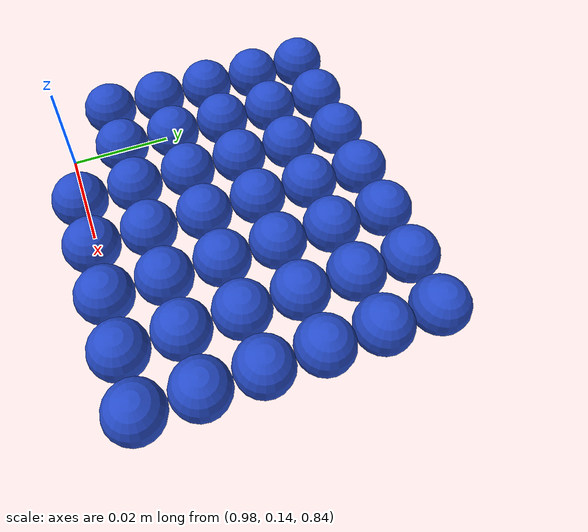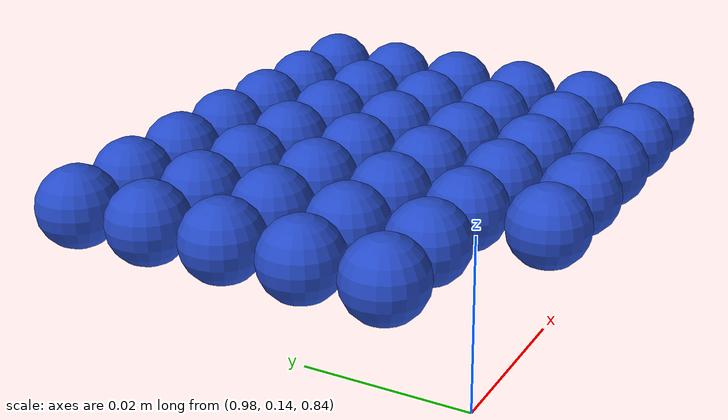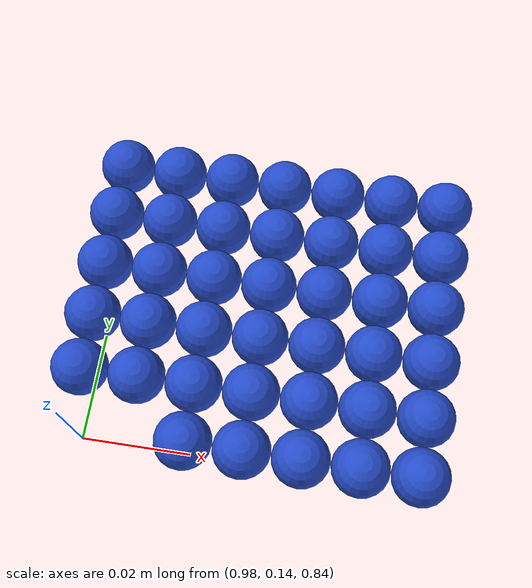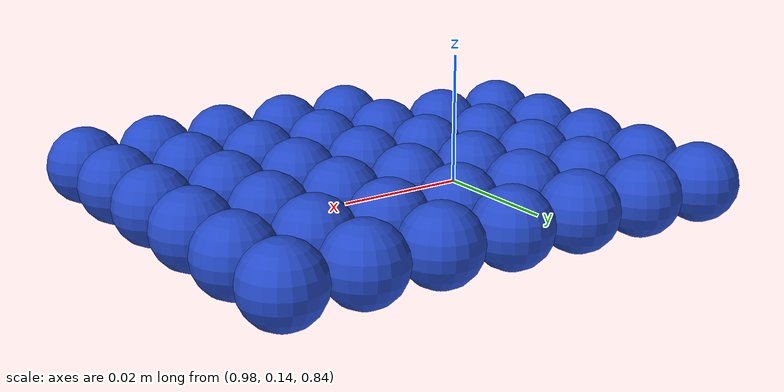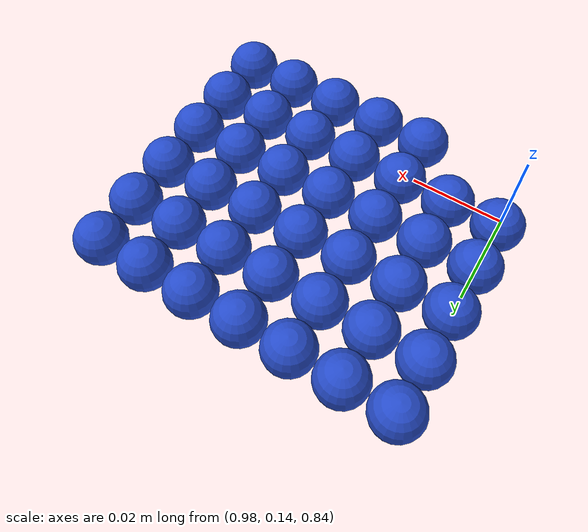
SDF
<sdf version="1.4">
 <world name="default">
  <include><uri>model://ground_plane</uri></include>
  <include><uri>model://sun</uri></include>
  <model name="ball_bearing_45">
   <link name="link">
    <pose>0 0 0.003 0 0 0</pose>
    <inertial>
     <mass>0.0011</mass>
     <inertia>
      <ixx>3.96e-09</ixx>
      <ixy>0</ixy>
      <ixz>0</ixz>
      <iyy>3.96e-09</iyy>
      <iyz>0</iyz>
      <izz>3.96e-09</izz>
     </inertia>
    </inertial>
    <collision name="collision">
     <geometry><sphere><radius>0.005</radius></sphere></geometry>
     <surface><contact><ode><max_vel>0.1</max_vel><min_depth>0.0001</min_depth></ode></contact></surface>
    </collision>
    <visual name="visual">
     <geometry><sphere><radius>0.005</radius></sphere></geometry>
     <material>
      <script><uri>file://media/materials/scripts/gazebo.material</uri><name>Gazebo/Blue</name></script>
     </material>
    </visual>
    <velocity_decay><linear>0</linear><angular>0.005</angular></velocity_decay>
   </link>
   <pose>1.0 0.14 0.85 0.0 0.0 0.0</pose>
  </model>
  <model name="ball_bearing_46">
   <link name="link">
    <pose>0 0 0.003 0 0 0</pose>
    <inertial>
     <mass>0.0011</mass>
     <inertia>
      <ixx>3.96e-09</ixx>
      <ixy>0</ixy>
      <ixz>0</ixz>
      <iyy>3.96e-09</iyy>
      <iyz>0</iyz>
      <izz>3.96e-09</izz>
     </inertia>
    </inertial>
    <collision name="collision">
     <geometry><sphere><radius>0.005</radius></sphere></geometry>
     <surface><contact><ode><max_vel>0.1</max_vel><min_depth>0.0001</min_depth></ode></contact></surface>
    </collision>
    <visual name="visual">
     <geometry><sphere><radius>0.005</radius></sphere></geometry>
     <material>
      <script><uri>file://media/materials/scripts/gazebo.material</uri><name>Gazebo/Blue</name></script>
     </material>
    </visual>
    <velocity_decay><linear>0</linear><angular>0.005</angular></velocity_decay>
   </link>
   <pose>1.01 0.14 0.85 0.0 0.0 0.0</pose>
  </model>
  <model name="ball_bearing_47">
   <link name="link">
    <pose>0 0 0.003 0 0 0</pose>
    <inertial>
     <mass>0.0011</mass>
     <inertia>
      <ixx>3.96e-09</ixx>
      <ixy>0</ixy>
      <ixz>0</ixz>
      <iyy>3.96e-09</iyy>
      <iyz>0</iyz>
      <izz>3.96e-09</izz>
     </inertia>
    </inertial>
    <collision name="collision">
     <geometry><sphere><radius>0.005</radius></sphere></geometry>
     <surface><contact><ode><max_vel>0.1</max_vel><min_depth>0.0001</min_depth></ode></contact></surface>
    </collision>
    <visual name="visual">
     <geometry><sphere><radius>0.005</radius></sphere></geometry>
     <material>
      <script><uri>file://media/materials/scripts/gazebo.material</uri><name>Gazebo/Blue</name></script>
     </material>
    </visual>
    <velocity_decay><linear>0</linear><angular>0.005</angular></velocity_decay>
   </link>
   <pose>1.02 0.14 0.85 0.0 0.0 0.0</pose>
  </model>
  <model name="ball_bearing_48">
   <link name="link">
    <pose>0 0 0.003 0 0 0</pose>
    <inertial>
     <mass>0.0011</mass>
     <inertia>
      <ixx>3.96e-09</ixx>
      <ixy>0</ixy>
      <ixz>0</ixz>
      <iyy>3.96e-09</iyy>
      <iyz>0</iyz>
      <izz>3.96e-09</izz>
     </inertia>
    </inertial>
    <collision name="collision">
     <geometry><sphere><radius>0.005</radius></sphere></geometry>
     <surface><contact><ode><max_vel>0.1</max_vel><min_depth>0.0001</min_depth></ode></contact></surface>
    </collision>
    <visual name="visual">
     <geometry><sphere><radius>0.005</radius></sphere></geometry>
     <material>
      <script><uri>file://media/materials/scripts/gazebo.material</uri><name>Gazebo/Blue</name></script>
     </material>
    </visual>
    <velocity_decay><linear>0</linear><angular>0.005</angular></velocity_decay>
   </link>
   <pose>1.03 0.14 0.85 0.0 0.0 0.0</pose>
  </model>
  <model name="ball_bearing_49">
   <link name="link">
    <pose>0 0 0.003 0 0 0</pose>
    <inertial>
     <mass>0.0011</mass>
     <inertia>
      <ixx>3.96e-09</ixx>
      <ixy>0</ixy>
      <ixz>0</ixz>
      <iyy>3.96e-09</iyy>
      <iyz>0</iyz>
      <izz>3.96e-09</izz>
     </inertia>
    </inertial>
    <collision name="collision">
     <geometry><sphere><radius>0.005</radius></sphere></geometry>
     <surface><contact><ode><max_vel>0.1</max_vel><min_depth>0.0001</min_depth></ode></contact></surface>
    </collision>
    <visual name="visual">
     <geometry><sphere><radius>0.005</radius></sphere></geometry>
     <material>
      <script><uri>file://media/materials/scripts/gazebo.material</uri><name>Gazebo/Blue</name></script>
     </material>
    </visual>
    <velocity_decay><linear>0</linear><angular>0.005</angular></velocity_decay>
   </link>
   <pose>1.04 0.14 0.85 0.0 0.0 0.0</pose>
  </model>
  <model name="ball_bearing_53">
   <link name="link">
    <pose>0 0 0.003 0 0 0</pose>
    <inertial>
     <mass>0.0011</mass>
     <inertia>
      <ixx>3.96e-09</ixx>
      <ixy>0</ixy>
      <ixz>0</ixz>
      <iyy>3.96e-09</iyy>
      <iyz>0</iyz>
      <izz>3.96e-09</izz>
     </inertia>
    </inertial>
    <collision name="collision">
     <geometry><sphere><radius>0.005</radius></sphere></geometry>
     <surface><contact><ode><max_vel>0.1</max_vel><min_depth>0.0001</min_depth></ode></contact></surface>
    </collision>
    <visual name="visual">
     <geometry><sphere><radius>0.005</radius></sphere></geometry>
     <material>
      <script><uri>file://media/materials/scripts/gazebo.material</uri><name>Gazebo/Blue</name></script>
     </material>
    </visual>
    <velocity_decay><linear>0</linear><angular>0.005</angular></velocity_decay>
   </link>
   <pose>0.98 0.15 0.85 0.0 0.0 0.0</pose>
  </model>
  <model name="ball_bearing_54">
   <link name="link">
    <pose>0 0 0.003 0 0 0</pose>
    <inertial>
     <mass>0.0011</mass>
     <inertia>
      <ixx>3.96e-09</ixx>
      <ixy>0</ixy>
      <ixz>0</ixz>
      <iyy>3.96e-09</iyy>
      <iyz>0</iyz>
      <izz>3.96e-09</izz>
     </inertia>
    </inertial>
    <collision name="collision">
     <geometry><sphere><radius>0.005</radius></sphere></geometry>
     <surface><contact><ode><max_vel>0.1</max_vel><min_depth>0.0001</min_depth></ode></contact></surface>
    </collision>
    <visual name="visual">
     <geometry><sphere><radius>0.005</radius></sphere></geometry>
     <material>
      <script><uri>file://media/materials/scripts/gazebo.material</uri><name>Gazebo/Blue</name></script>
     </material>
    </visual>
    <velocity_decay><linear>0</linear><angular>0.005</angular></velocity_decay>
   </link>
   <pose>0.99 0.15 0.85 0.0 0.0 0.0</pose>
  </model>
  <model name="ball_bearing_55">
   <link name="link">
    <pose>0 0 0.003 0 0 0</pose>
    <inertial>
     <mass>0.0011</mass>
     <inertia>
      <ixx>3.96e-09</ixx>
      <ixy>0</ixy>
      <ixz>0</ixz>
      <iyy>3.96e-09</iyy>
      <iyz>0</iyz>
      <izz>3.96e-09</izz>
     </inertia>
    </inertial>
    <collision name="collision">
     <geometry><sphere><radius>0.005</radius></sphere></geometry>
     <surface><contact><ode><max_vel>0.1</max_vel><min_depth>0.0001</min_depth></ode></contact></surface>
    </collision>
    <visual name="visual">
     <geometry><sphere><radius>0.005</radius></sphere></geometry>
     <material>
      <script><uri>file://media/materials/scripts/gazebo.material</uri><name>Gazebo/Blue</name></script>
     </material>
    </visual>
    <velocity_decay><linear>0</linear><angular>0.005</angular></velocity_decay>
   </link>
   <pose>1.0 0.15 0.85 0.0 0.0 0.0</pose>
  </model>
  <model name="ball_bearing_56">
   <link name="link">
    <pose>0 0 0.003 0 0 0</pose>
    <inertial>
     <mass>0.0011</mass>
     <inertia>
      <ixx>3.96e-09</ixx>
      <ixy>0</ixy>
      <ixz>0</ixz>
      <iyy>3.96e-09</iyy>
      <iyz>0</iyz>
      <izz>3.96e-09</izz>
     </inertia>
    </inertial>
    <collision name="collision">
     <geometry><sphere><radius>0.005</radius></sphere></geometry>
     <surface><contact><ode><max_vel>0.1</max_vel><min_depth>0.0001</min_depth></ode></contact></surface>
    </collision>
    <visual name="visual">
     <geometry><sphere><radius>0.005</radius></sphere></geometry>
     <material>
      <script><uri>file://media/materials/scripts/gazebo.material</uri><name>Gazebo/Blue</name></script>
     </material>
    </visual>
    <velocity_decay><linear>0</linear><angular>0.005</angular></velocity_decay>
   </link>
   <pose>1.01 0.15 0.85 0.0 0.0 0.0</pose>
  </model>
  <model name="ball_bearing_57">
   <link name="link">
    <pose>0 0 0.003 0 0 0</pose>
    <inertial>
     <mass>0.0011</mass>
     <inertia>
      <ixx>3.96e-09</ixx>
      <ixy>0</ixy>
      <ixz>0</ixz>
      <iyy>3.96e-09</iyy>
      <iyz>0</iyz>
      <izz>3.96e-09</izz>
     </inertia>
    </inertial>
    <collision name="collision">
     <geometry><sphere><radius>0.005</radius></sphere></geometry>
     <surface><contact><ode><max_vel>0.1</max_vel><min_depth>0.0001</min_depth></ode></contact></surface>
    </collision>
    <visual name="visual">
     <geometry><sphere><radius>0.005</radius></sphere></geometry>
     <material>
      <script><uri>file://media/materials/scripts/gazebo.material</uri><name>Gazebo/Blue</name></script>
     </material>
    </visual>
    <velocity_decay><linear>0</linear><angular>0.005</angular></velocity_decay>
   </link>
   <pose>1.02 0.15 0.85 0.0 0.0 0.0</pose>
  </model>
  <model name="ball_bearing_58">
   <link name="link">
    <pose>0 0 0.003 0 0 0</pose>
    <inertial>
     <mass>0.0011</mass>
     <inertia>
      <ixx>3.96e-09</ixx>
      <ixy>0</ixy>
      <ixz>0</ixz>
      <iyy>3.96e-09</iyy>
      <iyz>0</iyz>
      <izz>3.96e-09</izz>
     </inertia>
    </inertial>
    <collision name="collision">
     <geometry><sphere><radius>0.005</radius></sphere></geometry>
     <surface><contact><ode><max_vel>0.1</max_vel><min_depth>0.0001</min_depth></ode></contact></surface>
    </collision>
    <visual name="visual">
     <geometry><sphere><radius>0.005</radius></sphere></geometry>
     <material>
      <script><uri>file://media/materials/scripts/gazebo.material</uri><name>Gazebo/Blue</name></script>
     </material>
    </visual>
    <velocity_decay><linear>0</linear><angular>0.005</angular></velocity_decay>
   </link>
   <pose>1.03 0.15 0.85 0.0 0.0 0.0</pose>
  </model>
  <model name="ball_bearing_59">
   <link name="link">
    <pose>0 0 0.003 0 0 0</pose>
    <inertial>
     <mass>0.0011</mass>
     <inertia>
      <ixx>3.96e-09</ixx>
      <ixy>0</ixy>
      <ixz>0</ixz>
      <iyy>3.96e-09</iyy>
      <iyz>0</iyz>
      <izz>3.96e-09</izz>
     </inertia>
    </inertial>
    <collision name="collision">
     <geometry><sphere><radius>0.005</radius></sphere></geometry>
     <surface><contact><ode><max_vel>0.1</max_vel><min_depth>0.0001</min_depth></ode></contact></surface>
    </collision>
    <visual name="visual">
     <geometry><sphere><radius>0.005</radius></sphere></geometry>
     <material>
      <script><uri>file://media/materials/scripts/gazebo.material</uri><name>Gazebo/Blue</name></script>
     </material>
    </visual>
    <velocity_decay><linear>0</linear><angular>0.005</angular></velocity_decay>
   </link>
   <pose>1.04 0.15 0.85 0.0 0.0 0.0</pose>
  </model>
  <model name="ball_bearing_63">
   <link name="link">
    <pose>0 0 0.003 0 0 0</pose>
    <inertial>
     <mass>0.0011</mass>
     <inertia>
      <ixx>3.96e-09</ixx>
      <ixy>0</ixy>
      <ixz>0</ixz>
      <iyy>3.96e-09</iyy>
      <iyz>0</iyz>
      <izz>3.96e-09</izz>
     </inertia>
    </inertial>
    <collision name="collision">
     <geometry><sphere><radius>0.005</radius></sphere></geometry>
     <surface><contact><ode><max_vel>0.1</max_vel><min_depth>0.0001</min_depth></ode></contact></surface>
    </collision>
    <visual name="visual">
     <geometry><sphere><radius>0.005</radius></sphere></geometry>
     <material>
      <script><uri>file://media/materials/scripts/gazebo.material</uri><name>Gazebo/Blue</name></script>
     </material>
    </visual>
    <velocity_decay><linear>0</linear><angular>0.005</angular></velocity_decay>
   </link>
   <pose>0.98 0.16 0.85 0.0 0.0 0.0</pose>
  </model>
  <model name="ball_bearing_64">
   <link name="link">
    <pose>0 0 0.003 0 0 0</pose>
    <inertial>
     <mass>0.0011</mass>
     <inertia>
      <ixx>3.96e-09</ixx>
      <ixy>0</ixy>
      <ixz>0</ixz>
      <iyy>3.96e-09</iyy>
      <iyz>0</iyz>
      <izz>3.96e-09</izz>
     </inertia>
    </inertial>
    <collision name="collision">
     <geometry><sphere><radius>0.005</radius></sphere></geometry>
     <surface><contact><ode><max_vel>0.1</max_vel><min_depth>0.0001</min_depth></ode></contact></surface>
    </collision>
    <visual name="visual">
     <geometry><sphere><radius>0.005</radius></sphere></geometry>
     <material>
      <script><uri>file://media/materials/scripts/gazebo.material</uri><name>Gazebo/Blue</name></script>
     </material>
    </visual>
    <velocity_decay><linear>0</linear><angular>0.005</angular></velocity_decay>
   </link>
   <pose>0.99 0.16 0.85 0.0 0.0 0.0</pose>
  </model>
  <model name="ball_bearing_65">
   <link name="link">
    <pose>0 0 0.003 0 0 0</pose>
    <inertial>
     <mass>0.0011</mass>
     <inertia>
      <ixx>3.96e-09</ixx>
      <ixy>0</ixy>
      <ixz>0</ixz>
      <iyy>3.96e-09</iyy>
      <iyz>0</iyz>
      <izz>3.96e-09</izz>
     </inertia>
    </inertial>
    <collision name="collision">
     <geometry><sphere><radius>0.005</radius></sphere></geometry>
     <surface><contact><ode><max_vel>0.1</max_vel><min_depth>0.0001</min_depth></ode></contact></surface>
    </collision>
    <visual name="visual">
     <geometry><sphere><radius>0.005</radius></sphere></geometry>
     <material>
      <script><uri>file://media/materials/scripts/gazebo.material</uri><name>Gazebo/Blue</name></script>
     </material>
    </visual>
    <velocity_decay><linear>0</linear><angular>0.005</angular></velocity_decay>
   </link>
   <pose>1.0 0.16 0.85 0.0 0.0 0.0</pose>
  </model>
  <model name="ball_bearing_66">
   <link name="link">
    <pose>0 0 0.003 0 0 0</pose>
    <inertial>
     <mass>0.0011</mass>
     <inertia>
      <ixx>3.96e-09</ixx>
      <ixy>0</ixy>
      <ixz>0</ixz>
      <iyy>3.96e-09</iyy>
      <iyz>0</iyz>
      <izz>3.96e-09</izz>
     </inertia>
    </inertial>
    <collision name="collision">
     <geometry><sphere><radius>0.005</radius></sphere></geometry>
     <surface><contact><ode><max_vel>0.1</max_vel><min_depth>0.0001</min_depth></ode></contact></surface>
    </collision>
    <visual name="visual">
     <geometry><sphere><radius>0.005</radius></sphere></geometry>
     <material>
      <script><uri>file://media/materials/scripts/gazebo.material</uri><name>Gazebo/Blue</name></script>
     </material>
    </visual>
    <velocity_decay><linear>0</linear><angular>0.005</angular></velocity_decay>
   </link>
   <pose>1.01 0.16 0.85 0.0 0.0 0.0</pose>
  </model>
  <model name="ball_bearing_67">
   <link name="link">
    <pose>0 0 0.003 0 0 0</pose>
    <inertial>
     <mass>0.0011</mass>
     <inertia>
      <ixx>3.96e-09</ixx>
      <ixy>0</ixy>
      <ixz>0</ixz>
      <iyy>3.96e-09</iyy>
      <iyz>0</iyz>
      <izz>3.96e-09</izz>
     </inertia>
    </inertial>
    <collision name="collision">
     <geometry><sphere><radius>0.005</radius></sphere></geometry>
     <surface><contact><ode><max_vel>0.1</max_vel><min_depth>0.0001</min_depth></ode></contact></surface>
    </collision>
    <visual name="visual">
     <geometry><sphere><radius>0.005</radius></sphere></geometry>
     <material>
      <script><uri>file://media/materials/scripts/gazebo.material</uri><name>Gazebo/Blue</name></script>
     </material>
    </visual>
    <velocity_decay><linear>0</linear><angular>0.005</angular></velocity_decay>
   </link>
   <pose>1.02 0.16 0.85 0.0 0.0 0.0</pose>
  </model>
  <model name="ball_bearing_68">
   <link name="link">
    <pose>0 0 0.003 0 0 0</pose>
    <inertial>
     <mass>0.0011</mass>
     <inertia>
      <ixx>3.96e-09</ixx>
      <ixy>0</ixy>
      <ixz>0</ixz>
      <iyy>3.96e-09</iyy>
      <iyz>0</iyz>
      <izz>3.96e-09</izz>
     </inertia>
    </inertial>
    <collision name="collision">
     <geometry><sphere><radius>0.005</radius></sphere></geometry>
     <surface><contact><ode><max_vel>0.1</max_vel><min_depth>0.0001</min_depth></ode></contact></surface>
    </collision>
    <visual name="visual">
     <geometry><sphere><radius>0.005</radius></sphere></geometry>
     <material>
      <script><uri>file://media/materials/scripts/gazebo.material</uri><name>Gazebo/Blue</name></script>
     </material>
    </visual>
    <velocity_decay><linear>0</linear><angular>0.005</angular></velocity_decay>
   </link>
   <pose>1.03 0.16 0.85 0.0 0.0 0.0</pose>
  </model>
  <model name="ball_bearing_69">
   <link name="link">
    <pose>0 0 0.003 0 0 0</pose>
    <inertial>
     <mass>0.0011</mass>
     <inertia>
      <ixx>3.96e-09</ixx>
      <ixy>0</ixy>
      <ixz>0</ixz>
      <iyy>3.96e-09</iyy>
      <iyz>0</iyz>
      <izz>3.96e-09</izz>
     </inertia>
    </inertial>
    <collision name="collision">
     <geometry><sphere><radius>0.005</radius></sphere></geometry>
     <surface><contact><ode><max_vel>0.1</max_vel><min_depth>0.0001</min_depth></ode></contact></surface>
    </collision>
    <visual name="visual">
     <geometry><sphere><radius>0.005</radius></sphere></geometry>
     <material>
      <script><uri>file://media/materials/scripts/gazebo.material</uri><name>Gazebo/Blue</name></script>
     </material>
    </visual>
    <velocity_decay><linear>0</linear><angular>0.005</angular></velocity_decay>
   </link>
   <pose>1.04 0.16 0.85 0.0 0.0 0.0</pose>
  </model>
  <model name="ball_bearing_73">
   <link name="link">
    <pose>0 0 0.003 0 0 0</pose>
    <inertial>
     <mass>0.0011</mass>
     <inertia>
      <ixx>3.96e-09</ixx>
      <ixy>0</ixy>
      <ixz>0</ixz>
      <iyy>3.96e-09</iyy>
      <iyz>0</iyz>
      <izz>3.96e-09</izz>
     </inertia>
    </inertial>
    <collision name="collision">
     <geometry><sphere><radius>0.005</radius></sphere></geometry>
     <surface><contact><ode><max_vel>0.1</max_vel><min_depth>0.0001</min_depth></ode></contact></surface>
    </collision>
    <visual name="visual">
     <geometry><sphere><radius>0.005</radius></sphere></geometry>
     <material>
      <script><uri>file://media/materials/scripts/gazebo.material</uri><name>Gazebo/Blue</name></script>
     </material>
    </visual>
    <velocity_decay><linear>0</linear><angular>0.005</angular></velocity_decay>
   </link>
   <pose>0.98 0.17 0.85 0.0 0.0 0.0</pose>
  </model>
  <model name="ball_bearing_74">
   <link name="link">
    <pose>0 0 0.003 0 0 0</pose>
    <inertial>
     <mass>0.0011</mass>
     <inertia>
      <ixx>3.96e-09</ixx>
      <ixy>0</ixy>
      <ixz>0</ixz>
      <iyy>3.96e-09</iyy>
      <iyz>0</iyz>
      <izz>3.96e-09</izz>
     </inertia>
    </inertial>
    <collision name="collision">
     <geometry><sphere><radius>0.005</radius></sphere></geometry>
     <surface><contact><ode><max_vel>0.1</max_vel><min_depth>0.0001</min_depth></ode></contact></surface>
    </collision>
    <visual name="visual">
     <geometry><sphere><radius>0.005</radius></sphere></geometry>
     <material>
      <script><uri>file://media/materials/scripts/gazebo.material</uri><name>Gazebo/Blue</name></script>
     </material>
    </visual>
    <velocity_decay><linear>0</linear><angular>0.005</angular></velocity_decay>
   </link>
   <pose>0.99 0.17 0.85 0.0 0.0 0.0</pose>
  </model>
  <model name="ball_bearing_75">
   <link name="link">
    <pose>0 0 0.003 0 0 0</pose>
    <inertial>
     <mass>0.0011</mass>
     <inertia>
      <ixx>3.96e-09</ixx>
      <ixy>0</ixy>
      <ixz>0</ixz>
      <iyy>3.96e-09</iyy>
      <iyz>0</iyz>
      <izz>3.96e-09</izz>
     </inertia>
    </inertial>
    <collision name="collision">
     <geometry><sphere><radius>0.005</radius></sphere></geometry>
     <surface><contact><ode><max_vel>0.1</max_vel><min_depth>0.0001</min_depth></ode></contact></surface>
    </collision>
    <visual name="visual">
     <geometry><sphere><radius>0.005</radius></sphere></geometry>
     <material>
      <script><uri>file://media/materials/scripts/gazebo.material</uri><name>Gazebo/Blue</name></script>
     </material>
    </visual>
    <velocity_decay><linear>0</linear><angular>0.005</angular></velocity_decay>
   </link>
   <pose>1.0 0.17 0.85 0.0 0.0 0.0</pose>
  </model>
  <model name="ball_bearing_76">
   <link name="link">
    <pose>0 0 0.003 0 0 0</pose>
    <inertial>
     <mass>0.0011</mass>
     <inertia>
      <ixx>3.96e-09</ixx>
      <ixy>0</ixy>
      <ixz>0</ixz>
      <iyy>3.96e-09</iyy>
      <iyz>0</iyz>
      <izz>3.96e-09</izz>
     </inertia>
    </inertial>
    <collision name="collision">
     <geometry><sphere><radius>0.005</radius></sphere></geometry>
     <surface><contact><ode><max_vel>0.1</max_vel><min_depth>0.0001</min_depth></ode></contact></surface>
    </collision>
    <visual name="visual">
     <geometry><sphere><radius>0.005</radius></sphere></geometry>
     <material>
      <script><uri>file://media/materials/scripts/gazebo.material</uri><name>Gazebo/Blue</name></script>
     </material>
    </visual>
    <velocity_decay><linear>0</linear><angular>0.005</angular></velocity_decay>
   </link>
   <pose>1.01 0.17 0.85 0.0 0.0 0.0</pose>
  </model>
  <model name="ball_bearing_77">
   <link name="link">
    <pose>0 0 0.003 0 0 0</pose>
    <inertial>
     <mass>0.0011</mass>
     <inertia>
      <ixx>3.96e-09</ixx>
      <ixy>0</ixy>
      <ixz>0</ixz>
      <iyy>3.96e-09</iyy>
      <iyz>0</iyz>
      <izz>3.96e-09</izz>
     </inertia>
    </inertial>
    <collision name="collision">
     <geometry><sphere><radius>0.005</radius></sphere></geometry>
     <surface><contact><ode><max_vel>0.1</max_vel><min_depth>0.0001</min_depth></ode></contact></surface>
    </collision>
    <visual name="visual">
     <geometry><sphere><radius>0.005</radius></sphere></geometry>
     <material>
      <script><uri>file://media/materials/scripts/gazebo.material</uri><name>Gazebo/Blue</name></script>
     </material>
    </visual>
    <velocity_decay><linear>0</linear><angular>0.005</angular></velocity_decay>
   </link>
   <pose>1.02 0.17 0.85 0.0 0.0 0.0</pose>
  </model>
  <model name="ball_bearing_78">
   <link name="link">
    <pose>0 0 0.003 0 0 0</pose>
    <inertial>
     <mass>0.0011</mass>
     <inertia>
      <ixx>3.96e-09</ixx>
      <ixy>0</ixy>
      <ixz>0</ixz>
      <iyy>3.96e-09</iyy>
      <iyz>0</iyz>
      <izz>3.96e-09</izz>
     </inertia>
    </inertial>
    <collision name="collision">
     <geometry><sphere><radius>0.005</radius></sphere></geometry>
     <surface><contact><ode><max_vel>0.1</max_vel><min_depth>0.0001</min_depth></ode></contact></surface>
    </collision>
    <visual name="visual">
     <geometry><sphere><radius>0.005</radius></sphere></geometry>
     <material>
      <script><uri>file://media/materials/scripts/gazebo.material</uri><name>Gazebo/Blue</name></script>
     </material>
    </visual>
    <velocity_decay><linear>0</linear><angular>0.005</angular></velocity_decay>
   </link>
   <pose>1.03 0.17 0.85 0.0 0.0 0.0</pose>
  </model>
  <model name="ball_bearing_79">
   <link name="link">
    <pose>0 0 0.003 0 0 0</pose>
    <inertial>
     <mass>0.0011</mass>
     <inertia>
      <ixx>3.96e-09</ixx>
      <ixy>0</ixy>
      <ixz>0</ixz>
      <iyy>3.96e-09</iyy>
      <iyz>0</iyz>
      <izz>3.96e-09</izz>
     </inertia>
    </inertial>
    <collision name="collision">
     <geometry><sphere><radius>0.005</radius></sphere></geometry>
     <surface><contact><ode><max_vel>0.1</max_vel><min_depth>0.0001</min_depth></ode></contact></surface>
    </collision>
    <visual name="visual">
     <geometry><sphere><radius>0.005</radius></sphere></geometry>
     <material>
      <script><uri>file://media/materials/scripts/gazebo.material</uri><name>Gazebo/Blue</name></script>
     </material>
    </visual>
    <velocity_decay><linear>0</linear><angular>0.005</angular></velocity_decay>
   </link>
   <pose>1.04 0.17 0.85 0.0 0.0 0.0</pose>
  </model>
  <model name="ball_bearing_83">
   <link name="link">
    <pose>0 0 0.003 0 0 0</pose>
    <inertial>
     <mass>0.0011</mass>
     <inertia>
      <ixx>3.96e-09</ixx>
      <ixy>0</ixy>
      <ixz>0</ixz>
      <iyy>3.96e-09</iyy>
      <iyz>0</iyz>
      <izz>3.96e-09</izz>
     </inertia>
    </inertial>
    <collision name="collision">
     <geometry><sphere><radius>0.005</radius></sphere></geometry>
     <surface><contact><ode><max_vel>0.1</max_vel><min_depth>0.0001</min_depth></ode></contact></surface>
    </collision>
    <visual name="visual">
     <geometry><sphere><radius>0.005</radius></sphere></geometry>
     <material>
      <script><uri>file://media/materials/scripts/gazebo.material</uri><name>Gazebo/Blue</name></script>
     </material>
    </visual>
    <velocity_decay><linear>0</linear><angular>0.005</angular></velocity_decay>
   </link>
   <pose>0.98 0.18 0.85 0.0 0.0 0.0</pose>
  </model>
  <model name="ball_bearing_84">
   <link name="link">
    <pose>0 0 0.003 0 0 0</pose>
    <inertial>
     <mass>0.0011</mass>
     <inertia>
      <ixx>3.96e-09</ixx>
      <ixy>0</ixy>
      <ixz>0</ixz>
      <iyy>3.96e-09</iyy>
      <iyz>0</iyz>
      <izz>3.96e-09</izz>
     </inertia>
    </inertial>
    <collision name="collision">
     <geometry><sphere><radius>0.005</radius></sphere></geometry>
     <surface><contact><ode><max_vel>0.1</max_vel><min_depth>0.0001</min_depth></ode></contact></surface>
    </collision>
    <visual name="visual">
     <geometry><sphere><radius>0.005</radius></sphere></geometry>
     <material>
      <script><uri>file://media/materials/scripts/gazebo.material</uri><name>Gazebo/Blue</name></script>
     </material>
    </visual>
    <velocity_decay><linear>0</linear><angular>0.005</angular></velocity_decay>
   </link>
   <pose>0.99 0.18 0.85 0.0 0.0 0.0</pose>
  </model>
  <model name="ball_bearing_85">
   <link name="link">
    <pose>0 0 0.003 0 0 0</pose>
    <inertial>
     <mass>0.0011</mass>
     <inertia>
      <ixx>3.96e-09</ixx>
      <ixy>0</ixy>
      <ixz>0</ixz>
      <iyy>3.96e-09</iyy>
      <iyz>0</iyz>
      <izz>3.96e-09</izz>
     </inertia>
    </inertial>
    <collision name="collision">
     <geometry><sphere><radius>0.005</radius></sphere></geometry>
     <surface><contact><ode><max_vel>0.1</max_vel><min_depth>0.0001</min_depth></ode></contact></surface>
    </collision>
    <visual name="visual">
     <geometry><sphere><radius>0.005</radius></sphere></geometry>
     <material>
      <script><uri>file://media/materials/scripts/gazebo.material</uri><name>Gazebo/Blue</name></script>
     </material>
    </visual>
    <velocity_decay><linear>0</linear><angular>0.005</angular></velocity_decay>
   </link>
   <pose>1.0 0.18 0.85 0.0 0.0 0.0</pose>
  </model>
  <model name="ball_bearing_86">
   <link name="link">
    <pose>0 0 0.003 0 0 0</pose>
    <inertial>
     <mass>0.0011</mass>
     <inertia>
      <ixx>3.96e-09</ixx>
      <ixy>0</ixy>
      <ixz>0</ixz>
      <iyy>3.96e-09</iyy>
      <iyz>0</iyz>
      <izz>3.96e-09</izz>
     </inertia>
    </inertial>
    <collision name="collision">
     <geometry><sphere><radius>0.005</radius></sphere></geometry>
     <surface><contact><ode><max_vel>0.1</max_vel><min_depth>0.0001</min_depth></ode></contact></surface>
    </collision>
    <visual name="visual">
     <geometry><sphere><radius>0.005</radius></sphere></geometry>
     <material>
      <script><uri>file://media/materials/scripts/gazebo.material</uri><name>Gazebo/Blue</name></script>
     </material>
    </visual>
    <velocity_decay><linear>0</linear><angular>0.005</angular></velocity_decay>
   </link>
   <pose>1.01 0.18 0.85 0.0 0.0 0.0</pose>
  </model>
  <model name="ball_bearing_87">
   <link name="link">
    <pose>0 0 0.003 0 0 0</pose>
    <inertial>
     <mass>0.0011</mass>
     <inertia>
      <ixx>3.96e-09</ixx>
      <ixy>0</ixy>
      <ixz>0</ixz>
      <iyy>3.96e-09</iyy>
      <iyz>0</iyz>
      <izz>3.96e-09</izz>
     </inertia>
    </inertial>
    <collision name="collision">
     <geometry><sphere><radius>0.005</radius></sphere></geometry>
     <surface><contact><ode><max_vel>0.1</max_vel><min_depth>0.0001</min_depth></ode></contact></surface>
    </collision>
    <visual name="visual">
     <geometry><sphere><radius>0.005</radius></sphere></geometry>
     <material>
      <script><uri>file://media/materials/scripts/gazebo.material</uri><name>Gazebo/Blue</name></script>
     </material>
    </visual>
    <velocity_decay><linear>0</linear><angular>0.005</angular></velocity_decay>
   </link>
   <pose>1.02 0.18 0.85 0.0 0.0 0.0</pose>
  </model>
  <model name="ball_bearing_88">
   <link name="link">
    <pose>0 0 0.003 0 0 0</pose>
    <inertial>
     <mass>0.0011</mass>
     <inertia>
      <ixx>3.96e-09</ixx>
      <ixy>0</ixy>
      <ixz>0</ixz>
      <iyy>3.96e-09</iyy>
      <iyz>0</iyz>
      <izz>3.96e-09</izz>
     </inertia>
    </inertial>
    <collision name="collision">
     <geometry><sphere><radius>0.005</radius></sphere></geometry>
     <surface><contact><ode><max_vel>0.1</max_vel><min_depth>0.0001</min_depth></ode></contact></surface>
    </collision>
    <visual name="visual">
     <geometry><sphere><radius>0.005</radius></sphere></geometry>
     <material>
      <script><uri>file://media/materials/scripts/gazebo.material</uri><name>Gazebo/Blue</name></script>
     </material>
    </visual>
    <velocity_decay><linear>0</linear><angular>0.005</angular></velocity_decay>
   </link>
   <pose>1.03 0.18 0.85 0.0 0.0 0.0</pose>
  </model>
  <model name="ball_bearing_89">
   <link name="link">
    <pose>0 0 0.003 0 0 0</pose>
    <inertial>
     <mass>0.0011</mass>
     <inertia>
      <ixx>3.96e-09</ixx>
      <ixy>0</ixy>
      <ixz>0</ixz>
      <iyy>3.96e-09</iyy>
      <iyz>0</iyz>
      <izz>3.96e-09</izz>
     </inertia>
    </inertial>
    <collision name="collision">
     <geometry><sphere><radius>0.005</radius></sphere></geometry>
     <surface><contact><ode><max_vel>0.1</max_vel><min_depth>0.0001</min_depth></ode></contact></surface>
    </collision>
    <visual name="visual">
     <geometry><sphere><radius>0.005</radius></sphere></geometry>
     <material>
      <script><uri>file://media/materials/scripts/gazebo.material</uri><name>Gazebo/Blue</name></script>
     </material>
    </visual>
    <velocity_decay><linear>0</linear><angular>0.005</angular></velocity_decay>
   </link>
   <pose>1.04 0.18 0.85 0.0 0.0 0.0</pose>
  </model>
  <model name="ball_bearing_93">
   <link name="link">
    <pose>0 0 0.003 0 0 0</pose>
    <inertial>
     <mass>0.0011</mass>
     <inertia>
      <ixx>3.96e-09</ixx>
      <ixy>0</ixy>
      <ixz>0</ixz>
      <iyy>3.96e-09</iyy>
      <iyz>0</iyz>
      <izz>3.96e-09</izz>
     </inertia>
    </inertial>
    <collision name="collision">
     <geometry><sphere><radius>0.005</radius></sphere></geometry>
     <surface><contact><ode><max_vel>0.1</max_vel><min_depth>0.0001</min_depth></ode></contact></surface>
    </collision>
    <visual name="visual">
     <geometry><sphere><radius>0.005</radius></sphere></geometry>
     <material>
      <script><uri>file://media/materials/scripts/gazebo.material</uri><name>Gazebo/Blue</name></script>
     </material>
    </visual>
    <velocity_decay><linear>0</linear><angular>0.005</angular></velocity_decay>
   </link>
   <pose>0.98 0.19 0.85 0.0 0.0 0.0</pose>
  </model>
  <model name="ball_bearing_94">
   <link name="link">
    <pose>0 0 0.003 0 0 0</pose>
    <inertial>
     <mass>0.0011</mass>
     <inertia>
      <ixx>3.96e-09</ixx>
      <ixy>0</ixy>
      <ixz>0</ixz>
      <iyy>3.96e-09</iyy>
      <iyz>0</iyz>
      <izz>3.96e-09</izz>
     </inertia>
    </inertial>
    <collision name="collision">
     <geometry><sphere><radius>0.005</radius></sphere></geometry>
     <surface><contact><ode><max_vel>0.1</max_vel><min_depth>0.0001</min_depth></ode></contact></surface>
    </collision>
    <visual name="visual">
     <geometry><sphere><radius>0.005</radius></sphere></geometry>
     <material>
      <script><uri>file://media/materials/scripts/gazebo.material</uri><name>Gazebo/Blue</name></script>
     </material>
    </visual>
    <velocity_decay><linear>0</linear><angular>0.005</angular></velocity_decay>
   </link>
   <pose>0.99 0.19 0.85 0.0 0.0 0.0</pose>
  </model>
  <model name="ball_bearing_95">
   <link name="link">
    <pose>0 0 0.003 0 0 0</pose>
    <inertial>
     <mass>0.0011</mass>
     <inertia>
      <ixx>3.96e-09</ixx>
      <ixy>0</ixy>
      <ixz>0</ixz>
      <iyy>3.96e-09</iyy>
      <iyz>0</iyz>
      <izz>3.96e-09</izz>
     </inertia>
    </inertial>
    <collision name="collision">
     <geometry><sphere><radius>0.005</radius></sphere></geometry>
     <surface><contact><ode><max_vel>0.1</max_vel><min_depth>0.0001</min_depth></ode></contact></surface>
    </collision>
    <visual name="visual">
     <geometry><sphere><radius>0.005</radius></sphere></geometry>
     <material>
      <script><uri>file://media/materials/scripts/gazebo.material</uri><name>Gazebo/Blue</name></script>
     </material>
    </visual>
    <velocity_decay><linear>0</linear><angular>0.005</angular></velocity_decay>
   </link>
   <pose>1.0 0.19 0.85 0.0 0.0 0.0</pose>
  </model>
  <model name="ball_bearing_96">
   <link name="link">
    <pose>0 0 0.003 0 0 0</pose>
    <inertial>
     <mass>0.0011</mass>
     <inertia>
      <ixx>3.96e-09</ixx>
      <ixy>0</ixy>
      <ixz>0</ixz>
      <iyy>3.96e-09</iyy>
      <iyz>0</iyz>
      <izz>3.96e-09</izz>
     </inertia>
    </inertial>
    <collision name="collision">
     <geometry><sphere><radius>0.005</radius></sphere></geometry>
     <surface><contact><ode><max_vel>0.1</max_vel><min_depth>0.0001</min_depth></ode></contact></surface>
    </collision>
    <visual name="visual">
     <geometry><sphere><radius>0.005</radius></sphere></geometry>
     <material>
      <script><uri>file://media/materials/scripts/gazebo.material</uri><name>Gazebo/Blue</name></script>
     </material>
    </visual>
    <velocity_decay><linear>0</linear><angular>0.005</angular></velocity_decay>
   </link>
   <pose>1.01 0.19 0.85 0.0 0.0 0.0</pose>
  </model>
  <model name="ball_bearing_97">
   <link name="link">
    <pose>0 0 0.003 0 0 0</pose>
    <inertial>
     <mass>0.0011</mass>
     <inertia>
      <ixx>3.96e-09</ixx>
      <ixy>0</ixy>
      <ixz>0</ixz>
      <iyy>3.96e-09</iyy>
      <iyz>0</iyz>
      <izz>3.96e-09</izz>
     </inertia>
    </inertial>
    <collision name="collision">
     <geometry><sphere><radius>0.005</radius></sphere></geometry>
     <surface><contact><ode><max_vel>0.1</max_vel><min_depth>0.0001</min_depth></ode></contact></surface>
    </collision>
    <visual name="visual">
     <geometry><sphere><radius>0.005</radius></sphere></geometry>
     <material>
      <script><uri>file://media/materials/scripts/gazebo.material</uri><name>Gazebo/Blue</name></script>
     </material>
    </visual>
    <velocity_decay><linear>0</linear><angular>0.005</angular></velocity_decay>
   </link>
   <pose>1.02 0.19 0.85 0.0 0.0 0.0</pose>
  </model>
  <model name="ball_bearing_98">
   <link name="link">
    <pose>0 0 0.003 0 0 0</pose>
    <inertial>
     <mass>0.0011</mass>
     <inertia>
      <ixx>3.96e-09</ixx>
      <ixy>0</ixy>
      <ixz>0</ixz>
      <iyy>3.96e-09</iyy>
      <iyz>0</iyz>
      <izz>3.96e-09</izz>
     </inertia>
    </inertial>
    <collision name="collision">
     <geometry><sphere><radius>0.005</radius></sphere></geometry>
     <surface><contact><ode><max_vel>0.1</max_vel><min_depth>0.0001</min_depth></ode></contact></surface>
    </collision>
    <visual name="visual">
     <geometry><sphere><radius>0.005</radius></sphere></geometry>
     <material>
      <script><uri>file://media/materials/scripts/gazebo.material</uri><name>Gazebo/Blue</name></script>
     </material>
    </visual>
    <velocity_decay><linear>0</linear><angular>0.005</angular></velocity_decay>
   </link>
   <pose>1.03 0.19 0.85 0.0 0.0 0.0</pose>
  </model>
  <model name="ball_bearing_99">
   <link name="link">
    <pose>0 0 0.003 0 0 0</pose>
    <inertial>
     <mass>0.0011</mass>
     <inertia>
      <ixx>3.96e-09</ixx>
      <ixy>0</ixy>
      <ixz>0</ixz>
      <iyy>3.96e-09</iyy>
      <iyz>0</iyz>
      <izz>3.96e-09</izz>
     </inertia>
    </inertial>
    <collision name="collision">
     <geometry><sphere><radius>0.005</radius></sphere></geometry>
     <surface><contact><ode><max_vel>0.1</max_vel><min_depth>0.0001</min_depth></ode></contact></surface>
    </collision>
    <visual name="visual">
     <geometry><sphere><radius>0.005</radius></sphere></geometry>
     <material>
      <script><uri>file://media/materials/scripts/gazebo.material</uri><name>Gazebo/Blue</name></script>
     </material>
    </visual>
    <velocity_decay><linear>0</linear><angular>0.005</angular></velocity_decay>
   </link>
   <pose>1.04 0.19 0.85 0.0 0.0 0.0</pose>
  </model>
 </world>
</sdf>
